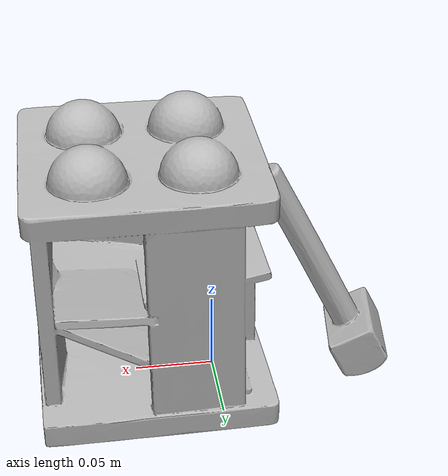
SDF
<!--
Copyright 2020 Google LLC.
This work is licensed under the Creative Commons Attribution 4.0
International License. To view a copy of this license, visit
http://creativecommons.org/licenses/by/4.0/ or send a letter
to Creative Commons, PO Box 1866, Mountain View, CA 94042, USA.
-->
<?xml version="1.0" ?>
<sdf version="1.6">
  <model name="Melissa_Doug_Pound_and_Roll">
    <link name="link_0">
      <visual name="visual">
        <geometry>
          <mesh>
            <uri>meshes/model.obj</uri>
          </mesh>
        </geometry>
      </visual>
      <collision name="collision_0">
        <geometry>
          <mesh>
            <uri>meshes/model.obj</uri>
          </mesh>
        </geometry>
      </collision>
    </link>
  </model>
</sdf>
